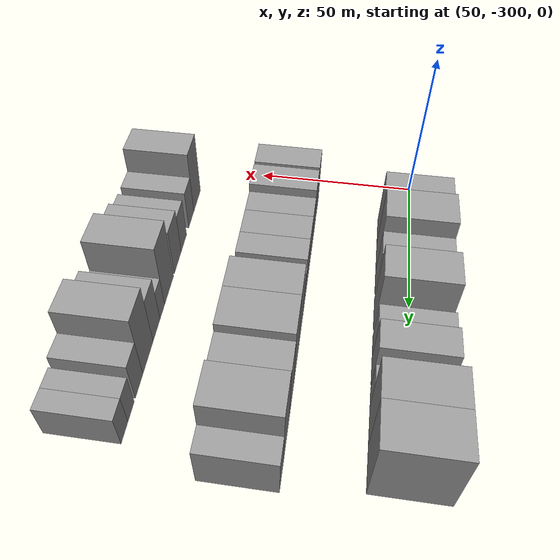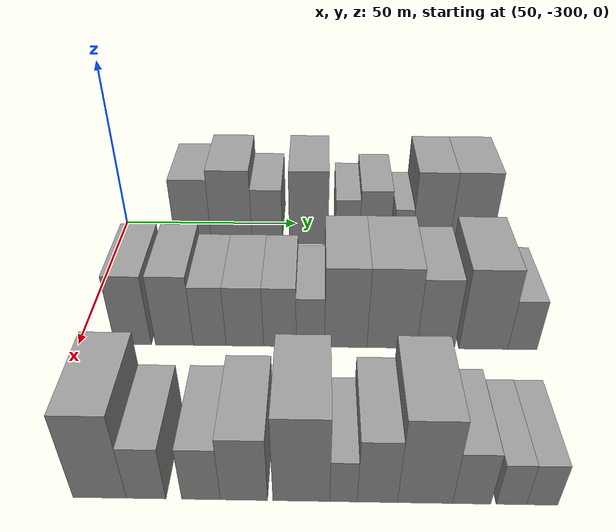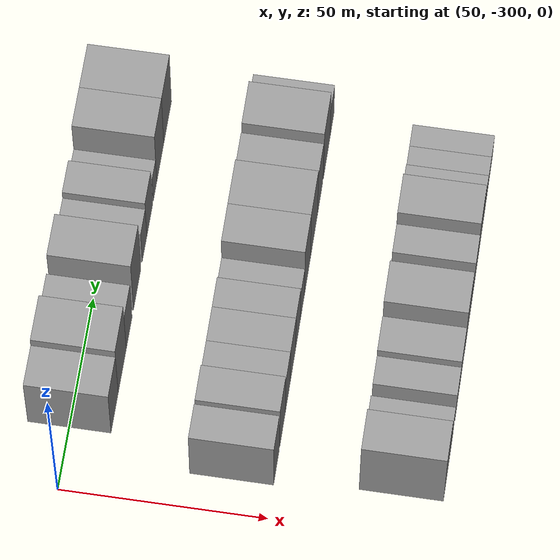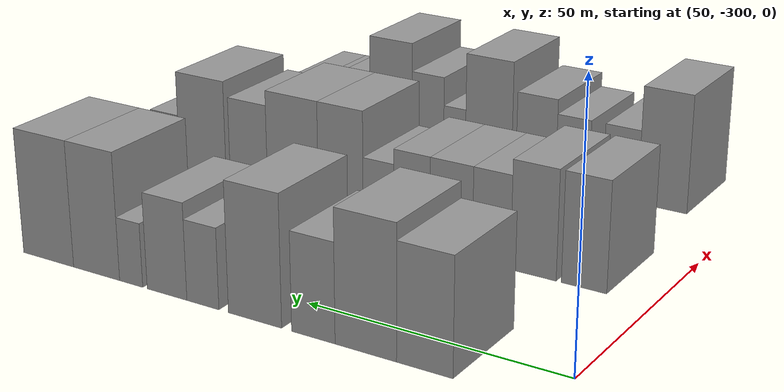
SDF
<sdf version="1.6">
 <world name="default">
  <model name="building_12">
   <static>1</static>
   <pose>50.0000 -278.7945 0 0.000000 0.000000 0.000000</pose>
   <link name="link">
    <pose>0 0 10.50 0 0 0</pose>
    <collision name="collision"><geometry><box><size>20.0000 10.3011 21.0000</size></box></geometry></collision>
    <visual name="visual">
     <cast_shadows>0</cast_shadows>
     <geometry><box><size>20.0000 10.3011 21.0000</size></box></geometry>
     <material>
      <script>
       <uri>model://grey_wall/materials/scripts</uri>
       <uri>model://grey_wall/materials/textures</uri>
       <name>vrc/grey_wall</name>
      </script>
     </material>
    </visual>
   </link>
  </model>
  <model name="building_13">
   <static>1</static>
   <pose>50.0000 -267.8266 0 0.000000 0.000000 0.000000</pose>
   <link name="link">
    <pose>0 0 12.00 0 0 0</pose>
    <collision name="collision"><geometry><box><size>20.0000 11.6347 24.0000</size></box></geometry></collision>
    <visual name="visual">
     <cast_shadows>0</cast_shadows>
     <geometry><box><size>20.0000 11.6347 24.0000</size></box></geometry>
     <material>
      <script>
       <uri>model://grey_wall/materials/scripts</uri>
       <uri>model://grey_wall/materials/textures</uri>
       <name>vrc/grey_wall</name>
      </script>
     </material>
    </visual>
   </link>
  </model>
  <model name="building_14">
   <static>1</static>
   <pose>50.0000 -257.7318 0 0.000000 0.000000 0.000000</pose>
   <link name="link">
    <pose>0 0 9.00 0 0 0</pose>
    <collision name="collision"><geometry><box><size>20.0000 8.5549 18.0000</size></box></geometry></collision>
    <visual name="visual">
     <cast_shadows>0</cast_shadows>
     <geometry><box><size>20.0000 8.5549 18.0000</size></box></geometry>
     <material>
      <script>
       <uri>model://grey_wall/materials/scripts</uri>
       <uri>model://grey_wall/materials/textures</uri>
       <name>vrc/grey_wall</name>
      </script>
     </material>
    </visual>
   </link>
  </model>
  <model name="building_15">
   <static>1</static>
   <pose>50.0000 -245.9967 0 0.000000 0.000000 0.000000</pose>
   <link name="link">
    <pose>0 0 12.00 0 0 0</pose>
    <collision name="collision"><geometry><box><size>20.0000 10.9153 24.0000</size></box></geometry></collision>
    <visual name="visual">
     <cast_shadows>0</cast_shadows>
     <geometry><box><size>20.0000 10.9153 24.0000</size></box></geometry>
     <material>
      <script>
       <uri>model://grey_wall/materials/scripts</uri>
       <uri>model://grey_wall/materials/textures</uri>
       <name>vrc/grey_wall</name>
      </script>
     </material>
    </visual>
   </link>
  </model>
  <model name="building_16">
   <static>1</static>
   <pose>50.0000 -235.1256 0 0.000000 0.000000 0.000000</pose>
   <link name="link">
    <pose>0 0 7.50 0 0 0</pose>
    <collision name="collision"><geometry><box><size>20.0000 6.8268 15.0000</size></box></geometry></collision>
    <visual name="visual">
     <cast_shadows>0</cast_shadows>
     <geometry><box><size>20.0000 6.8268 15.0000</size></box></geometry>
     <material>
      <script>
       <uri>model://grey_wall/materials/scripts</uri>
       <uri>model://grey_wall/materials/textures</uri>
       <name>vrc/grey_wall</name>
      </script>
     </material>
    </visual>
   </link>
  </model>
  <model name="building_17">
   <static>1</static>
   <pose>50.0000 -227.3693 0 0.000000 0.000000 0.000000</pose>
   <link name="link">
    <pose>0 0 9.00 0 0 0</pose>
    <collision name="collision"><geometry><box><size>20.0000 8.6857 18.0000</size></box></geometry></collision>
    <visual name="visual">
     <cast_shadows>0</cast_shadows>
     <geometry><box><size>20.0000 8.6857 18.0000</size></box></geometry>
     <material>
      <script>
       <uri>model://grey_wall/materials/scripts</uri>
       <uri>model://grey_wall/materials/textures</uri>
       <name>vrc/grey_wall</name>
      </script>
     </material>
    </visual>
   </link>
  </model>
  <model name="building_18">
   <static>1</static>
   <pose>50.0000 -219.4277 0 0.000000 0.000000 0.000000</pose>
   <link name="link">
    <pose>0 0 6.00 0 0 0</pose>
    <collision name="collision"><geometry><box><size>20.0000 5.1975 12.0000</size></box></geometry></collision>
    <visual name="visual">
     <cast_shadows>0</cast_shadows>
     <geometry><box><size>20.0000 5.1975 12.0000</size></box></geometry>
     <material>
      <script>
       <uri>model://grey_wall/materials/scripts</uri>
       <uri>model://grey_wall/materials/textures</uri>
       <name>vrc/grey_wall</name>
      </script>
     </material>
    </visual>
   </link>
  </model>
  <model name="building_19">
   <static>1</static>
   <pose>50.0000 -211.5159 0 0.000000 0.000000 0.000000</pose>
   <link name="link">
    <pose>0 0 12.00 0 0 0</pose>
    <collision name="collision"><geometry><box><size>20.0000 10.6261 24.0000</size></box></geometry></collision>
    <visual name="visual">
     <cast_shadows>0</cast_shadows>
     <geometry><box><size>20.0000 10.6261 24.0000</size></box></geometry>
     <material>
      <script>
       <uri>model://grey_wall/materials/scripts</uri>
       <uri>model://grey_wall/materials/textures</uri>
       <name>vrc/grey_wall</name>
      </script>
     </material>
    </visual>
   </link>
  </model>
  <model name="building_20">
   <static>1</static>
   <pose>50.0000 -200.2284 0 0.000000 0.000000 0.000000</pose>
   <link name="link">
    <pose>0 0 12.00 0 0 0</pose>
    <collision name="collision"><geometry><box><size>20.0000 11.9489 24.0000</size></box></geometry></collision>
    <visual name="visual">
     <cast_shadows>0</cast_shadows>
     <geometry><box><size>20.0000 11.9489 24.0000</size></box></geometry>
     <material>
      <script>
       <uri>model://grey_wall/materials/scripts</uri>
       <uri>model://grey_wall/materials/textures</uri>
       <name>vrc/grey_wall</name>
      </script>
     </material>
    </visual>
   </link>
  </model>
  <model name="building_91">
   <static>1</static>
   <pose>90.0000 -287.0091 0 0.000000 0.000000 0.000000</pose>
   <link name="link">
    <pose>0 0 10.50 0 0 0</pose>
    <collision name="collision"><geometry><box><size>20.0000 8.6771 21.0000</size></box></geometry></collision>
    <visual name="visual">
     <cast_shadows>0</cast_shadows>
     <geometry><box><size>20.0000 8.6771 21.0000</size></box></geometry>
     <material>
      <script>
       <uri>model://grey_wall/materials/scripts</uri>
       <uri>model://grey_wall/materials/textures</uri>
       <name>vrc/grey_wall</name>
      </script>
     </material>
    </visual>
   </link>
  </model>
  <model name="building_92">
   <static>1</static>
   <pose>90.0000 -277.1499 0 0.000000 0.000000 0.000000</pose>
   <link name="link">
    <pose>0 0 10.50 0 0 0</pose>
    <collision name="collision"><geometry><box><size>20.0000 9.0413 21.0000</size></box></geometry></collision>
    <visual name="visual">
     <cast_shadows>0</cast_shadows>
     <geometry><box><size>20.0000 9.0413 21.0000</size></box></geometry>
     <material>
      <script>
       <uri>model://grey_wall/materials/scripts</uri>
       <uri>model://grey_wall/materials/textures</uri>
       <name>vrc/grey_wall</name>
      </script>
     </material>
    </visual>
   </link>
  </model>
  <model name="building_93">
   <static>1</static>
   <pose>90.0000 -268.7550 0 0.000000 0.000000 0.000000</pose>
   <link name="link">
    <pose>0 0 9.00 0 0 0</pose>
    <collision name="collision"><geometry><box><size>20.0000 7.7486 18.0000</size></box></geometry></collision>
    <visual name="visual">
     <cast_shadows>0</cast_shadows>
     <geometry><box><size>20.0000 7.7486 18.0000</size></box></geometry>
     <material>
      <script>
       <uri>model://grey_wall/materials/scripts</uri>
       <uri>model://grey_wall/materials/textures</uri>
       <name>vrc/grey_wall</name>
      </script>
     </material>
    </visual>
   </link>
  </model>
  <model name="building_94">
   <static>1</static>
   <pose>90.0000 -260.4542 0 0.000000 0.000000 0.000000</pose>
   <link name="link">
    <pose>0 0 9.00 0 0 0</pose>
    <collision name="collision"><geometry><box><size>20.0000 8.8531 18.0000</size></box></geometry></collision>
    <visual name="visual">
     <cast_shadows>0</cast_shadows>
     <geometry><box><size>20.0000 8.8531 18.0000</size></box></geometry>
     <material>
      <script>
       <uri>model://grey_wall/materials/scripts</uri>
       <uri>model://grey_wall/materials/textures</uri>
       <name>vrc/grey_wall</name>
      </script>
     </material>
    </visual>
   </link>
  </model>
  <model name="building_95">
   <static>1</static>
   <pose>90.0000 -252.1604 0 0.000000 0.000000 0.000000</pose>
   <link name="link">
    <pose>0 0 9.00 0 0 0</pose>
    <collision name="collision"><geometry><box><size>20.0000 7.7344 18.0000</size></box></geometry></collision>
    <visual name="visual">
     <cast_shadows>0</cast_shadows>
     <geometry><box><size>20.0000 7.7344 18.0000</size></box></geometry>
     <material>
      <script>
       <uri>model://grey_wall/materials/scripts</uri>
       <uri>model://grey_wall/materials/textures</uri>
       <name>vrc/grey_wall</name>
      </script>
     </material>
    </visual>
   </link>
  </model>
  <model name="building_96">
   <static>1</static>
   <pose>90.0000 -244.9713 0 0.000000 0.000000 0.000000</pose>
   <link name="link">
    <pose>0 0 7.50 0 0 0</pose>
    <collision name="collision"><geometry><box><size>20.0000 6.6440 15.0000</size></box></geometry></collision>
    <visual name="visual">
     <cast_shadows>0</cast_shadows>
     <geometry><box><size>20.0000 6.6440 15.0000</size></box></geometry>
     <material>
      <script>
       <uri>model://grey_wall/materials/scripts</uri>
       <uri>model://grey_wall/materials/textures</uri>
       <name>vrc/grey_wall</name>
      </script>
     </material>
    </visual>
   </link>
  </model>
  <model name="building_97">
   <static>1</static>
   <pose>90.0000 -236.6431 0 0.000000 0.000000 0.000000</pose>
   <link name="link">
    <pose>0 0 12.00 0 0 0</pose>
    <collision name="collision"><geometry><box><size>20.0000 10.0123 24.0000</size></box></geometry></collision>
    <visual name="visual">
     <cast_shadows>0</cast_shadows>
     <geometry><box><size>20.0000 10.0123 24.0000</size></box></geometry>
     <material>
      <script>
       <uri>model://grey_wall/materials/scripts</uri>
       <uri>model://grey_wall/materials/textures</uri>
       <name>vrc/grey_wall</name>
      </script>
     </material>
    </visual>
   </link>
  </model>
  <model name="building_98">
   <static>1</static>
   <pose>90.0000 -225.7573 0 0.000000 0.000000 0.000000</pose>
   <link name="link">
    <pose>0 0 12.00 0 0 0</pose>
    <collision name="collision"><geometry><box><size>20.0000 11.7594 24.0000</size></box></geometry></collision>
    <visual name="visual">
     <cast_shadows>0</cast_shadows>
     <geometry><box><size>20.0000 11.7594 24.0000</size></box></geometry>
     <material>
      <script>
       <uri>model://grey_wall/materials/scripts</uri>
       <uri>model://grey_wall/materials/textures</uri>
       <name>vrc/grey_wall</name>
      </script>
     </material>
    </visual>
   </link>
  </model>
  <model name="building_99">
   <static>1</static>
   <pose>90.0000 -215.4258 0 0.000000 0.000000 0.000000</pose>
   <link name="link">
    <pose>0 0 10.50 0 0 0</pose>
    <collision name="collision"><geometry><box><size>20.0000 8.9036 21.0000</size></box></geometry></collision>
    <visual name="visual">
     <cast_shadows>0</cast_shadows>
     <geometry><box><size>20.0000 8.9036 21.0000</size></box></geometry>
     <material>
      <script>
       <uri>model://grey_wall/materials/scripts</uri>
       <uri>model://grey_wall/materials/textures</uri>
       <name>vrc/grey_wall</name>
      </script>
     </material>
    </visual>
   </link>
  </model>
  <model name="building_100">
   <static>1</static>
   <pose>90.0000 -204.2478 0 0.000000 0.000000 0.000000</pose>
   <link name="link">
    <pose>0 0 12.00 0 0 0</pose>
    <collision name="collision"><geometry><box><size>20.0000 11.4525 24.0000</size></box></geometry></collision>
    <visual name="visual">
     <cast_shadows>0</cast_shadows>
     <geometry><box><size>20.0000 11.4525 24.0000</size></box></geometry>
     <material>
      <script>
       <uri>model://grey_wall/materials/scripts</uri>
       <uri>model://grey_wall/materials/textures</uri>
       <name>vrc/grey_wall</name>
      </script>
     </material>
    </visual>
   </link>
  </model>
  <model name="building_101">
   <static>1</static>
   <pose>90.0000 -195.0919 0 0.000000 0.000000 0.000000</pose>
   <link name="link">
    <pose>0 0 7.50 0 0 0</pose>
    <collision name="collision"><geometry><box><size>20.0000 6.8593 15.0000</size></box></geometry></collision>
    <visual name="visual">
     <cast_shadows>0</cast_shadows>
     <geometry><box><size>20.0000 6.8593 15.0000</size></box></geometry>
     <material>
      <script>
       <uri>model://grey_wall/materials/scripts</uri>
       <uri>model://grey_wall/materials/textures</uri>
       <name>vrc/grey_wall</name>
      </script>
     </material>
    </visual>
   </link>
  </model>
  <model name="building_177">
   <static>1</static>
   <pose>130.0000 -284.3450 0 0.000000 0.000000 0.000000</pose>
   <link name="link">
    <pose>0 0 12.00 0 0 0</pose>
    <collision name="collision"><geometry><box><size>20.0000 10.1857 24.0000</size></box></geometry></collision>
    <visual name="visual">
     <cast_shadows>0</cast_shadows>
     <geometry><box><size>20.0000 10.1857 24.0000</size></box></geometry>
     <material>
      <script>
       <uri>model://grey_wall/materials/scripts</uri>
       <uri>model://grey_wall/materials/textures</uri>
       <name>vrc/grey_wall</name>
      </script>
     </material>
    </visual>
   </link>
  </model>
  <model name="building_178">
   <static>1</static>
   <pose>130.0000 -275.5042 0 0.000000 0.000000 0.000000</pose>
   <link name="link">
    <pose>0 0 7.50 0 0 0</pose>
    <collision name="collision"><geometry><box><size>20.0000 7.4959 15.0000</size></box></geometry></collision>
    <visual name="visual">
     <cast_shadows>0</cast_shadows>
     <geometry><box><size>20.0000 7.4959 15.0000</size></box></geometry>
     <material>
      <script>
       <uri>model://grey_wall/materials/scripts</uri>
       <uri>model://grey_wall/materials/textures</uri>
       <name>vrc/grey_wall</name>
      </script>
     </material>
    </visual>
   </link>
  </model>
  <model name="building_179">
   <static>1</static>
   <pose>130.0000 -265.0937 0 0.000000 0.000000 0.000000</pose>
   <link name="link">
    <pose>0 0 7.50 0 0 0</pose>
    <collision name="collision"><geometry><box><size>20.0000 7.3251 15.0000</size></box></geometry></collision>
    <visual name="visual">
     <cast_shadows>0</cast_shadows>
     <geometry><box><size>20.0000 7.3251 15.0000</size></box></geometry>
     <material>
      <script>
       <uri>model://grey_wall/materials/scripts</uri>
       <uri>model://grey_wall/materials/textures</uri>
       <name>vrc/grey_wall</name>
      </script>
     </material>
    </visual>
   </link>
  </model>
  <model name="building_180">
   <static>1</static>
   <pose>130.0000 -256.9616 0 0.000000 0.000000 0.000000</pose>
   <link name="link">
    <pose>0 0 9.00 0 0 0</pose>
    <collision name="collision"><geometry><box><size>20.0000 8.9392 18.0000</size></box></geometry></collision>
    <visual name="visual">
     <cast_shadows>0</cast_shadows>
     <geometry><box><size>20.0000 8.9392 18.0000</size></box></geometry>
     <material>
      <script>
       <uri>model://grey_wall/materials/scripts</uri>
       <uri>model://grey_wall/materials/textures</uri>
       <name>vrc/grey_wall</name>
      </script>
     </material>
    </visual>
   </link>
  </model>
  <model name="building_181">
   <static>1</static>
   <pose>130.0000 -246.1346 0 0.000000 0.000000 0.000000</pose>
   <link name="link">
    <pose>0 0 12.00 0 0 0</pose>
    <collision name="collision"><geometry><box><size>20.0000 10.7149 24.0000</size></box></geometry></collision>
    <visual name="visual">
     <cast_shadows>0</cast_shadows>
     <geometry><box><size>20.0000 10.7149 24.0000</size></box></geometry>
     <material>
      <script>
       <uri>model://grey_wall/materials/scripts</uri>
       <uri>model://grey_wall/materials/textures</uri>
       <name>vrc/grey_wall</name>
      </script>
     </material>
    </visual>
   </link>
  </model>
  <model name="building_182">
   <static>1</static>
   <pose>130.0000 -238.1975 0 0.000000 0.000000 0.000000</pose>
   <link name="link">
    <pose>0 0 6.00 0 0 0</pose>
    <collision name="collision"><geometry><box><size>20.0000 5.1592 12.0000</size></box></geometry></collision>
    <visual name="visual">
     <cast_shadows>0</cast_shadows>
     <geometry><box><size>20.0000 5.1592 12.0000</size></box></geometry>
     <material>
      <script>
       <uri>model://grey_wall/materials/scripts</uri>
       <uri>model://grey_wall/materials/textures</uri>
       <name>vrc/grey_wall</name>
      </script>
     </material>
    </visual>
   </link>
  </model>
  <model name="building_183">
   <static>1</static>
   <pose>130.0000 -231.8173 0 0.000000 0.000000 0.000000</pose>
   <link name="link">
    <pose>0 0 9.00 0 0 0</pose>
    <collision name="collision"><geometry><box><size>20.0000 7.6013 18.0000</size></box></geometry></collision>
    <visual name="visual">
     <cast_shadows>0</cast_shadows>
     <geometry><box><size>20.0000 7.6013 18.0000</size></box></geometry>
     <material>
      <script>
       <uri>model://grey_wall/materials/scripts</uri>
       <uri>model://grey_wall/materials/textures</uri>
       <name>vrc/grey_wall</name>
      </script>
     </material>
    </visual>
   </link>
  </model>
  <model name="building_184">
   <static>1</static>
   <pose>130.0000 -222.8439 0 0.000000 0.000000 0.000000</pose>
   <link name="link">
    <pose>0 0 12.00 0 0 0</pose>
    <collision name="collision"><geometry><box><size>20.0000 10.3456 24.0000</size></box></geometry></collision>
    <visual name="visual">
     <cast_shadows>0</cast_shadows>
     <geometry><box><size>20.0000 10.3456 24.0000</size></box></geometry>
     <material>
      <script>
       <uri>model://grey_wall/materials/scripts</uri>
       <uri>model://grey_wall/materials/textures</uri>
       <name>vrc/grey_wall</name>
      </script>
     </material>
    </visual>
   </link>
  </model>
  <model name="building_185">
   <static>1</static>
   <pose>130.0000 -214.0610 0 0.000000 0.000000 0.000000</pose>
   <link name="link">
    <pose>0 0 7.50 0 0 0</pose>
    <collision name="collision"><geometry><box><size>20.0000 7.2201 15.0000</size></box></geometry></collision>
    <visual name="visual">
     <cast_shadows>0</cast_shadows>
     <geometry><box><size>20.0000 7.2201 15.0000</size></box></geometry>
     <material>
      <script>
       <uri>model://grey_wall/materials/scripts</uri>
       <uri>model://grey_wall/materials/textures</uri>
       <name>vrc/grey_wall</name>
      </script>
     </material>
    </visual>
   </link>
  </model>
  <model name="building_186">
   <static>1</static>
   <pose>130.0000 -206.6276 0 0.000000 0.000000 0.000000</pose>
   <link name="link">
    <pose>0 0 6.00 0 0 0</pose>
    <collision name="collision"><geometry><box><size>20.0000 5.6467 12.0000</size></box></geometry></collision>
    <visual name="visual">
     <cast_shadows>0</cast_shadows>
     <geometry><box><size>20.0000 5.6467 12.0000</size></box></geometry>
     <material>
      <script>
       <uri>model://grey_wall/materials/scripts</uri>
       <uri>model://grey_wall/materials/textures</uri>
       <name>vrc/grey_wall</name>
      </script>
     </material>
    </visual>
   </link>
  </model>
  <model name="building_187">
   <static>1</static>
   <pose>130.0000 -200.8729 0 0.000000 0.000000 0.000000</pose>
   <link name="link">
    <pose>0 0 6.00 0 0 0</pose>
    <collision name="collision"><geometry><box><size>20.0000 5.8627 12.0000</size></box></geometry></collision>
    <visual name="visual">
     <cast_shadows>0</cast_shadows>
     <geometry><box><size>20.0000 5.8627 12.0000</size></box></geometry>
     <material>
      <script>
       <uri>model://grey_wall/materials/scripts</uri>
       <uri>model://grey_wall/materials/textures</uri>
       <name>vrc/grey_wall</name>
      </script>
     </material>
    </visual>
   </link>
  </model>
 </world>
</sdf>
